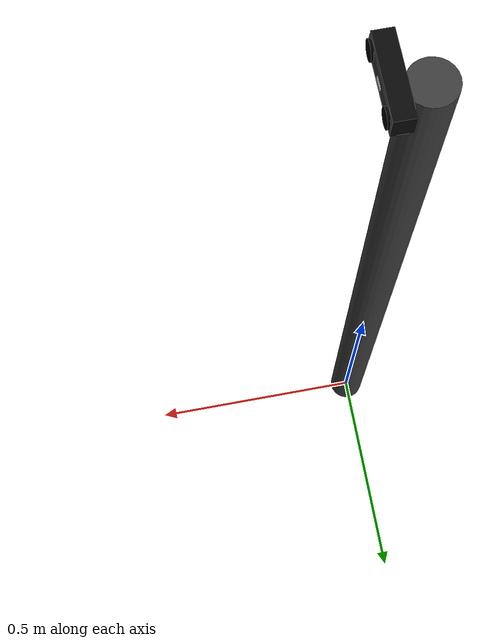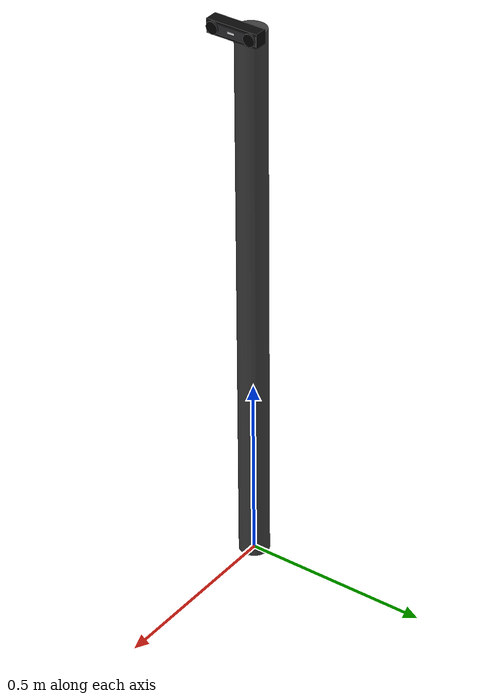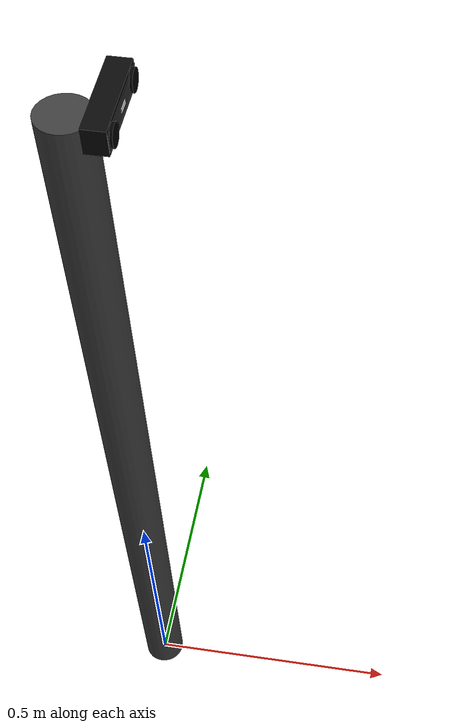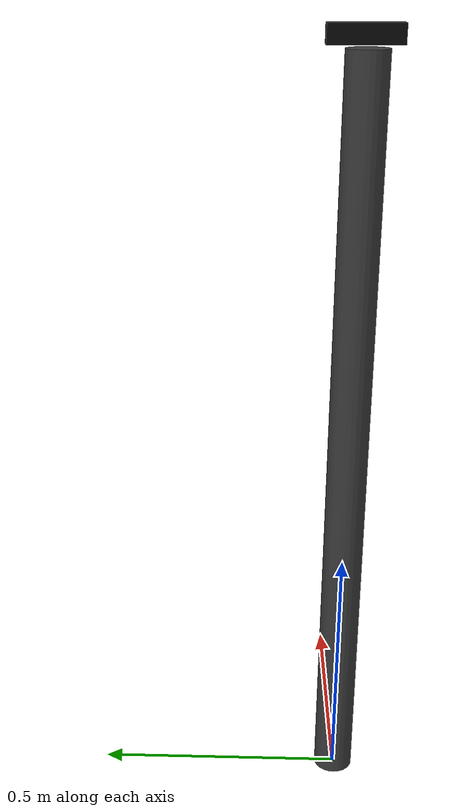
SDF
<sdf version="1.7">
 <world name="baylands_zedx_pole">
  <plugin filename="gz-sim-physics-system" name="gz::sim::systems::Physics"/>
  <plugin filename="gz-sim-user-commands-system" name="gz::sim::systems::UserCommands"/>
  <plugin filename="gz-sim-scene-broadcaster-system" name="gz::sim::systems::SceneBroadcaster"/>
  <plugin filename="gz-sim-sensors-system" name="gz::sim::systems::Sensors"/>
  <plugin filename="gz-sim-imu-system" name="gz::sim::systems::Imu"/>
  <physics name="default" type="ignored">
   <max_step_size>0.001</max_step_size>
   <real_time_factor>1.0</real_time_factor>
  </physics>
  <light name="sun" type="directional">
   <pose>0 0 10 0 0 0</pose>
   <intensity>3</intensity>
   <diffuse>1 1 1 1</diffuse>
   <specular>0.1 0.1 0.1 1</specular>
   <attenuation>
    <range>1000</range>
    <constant>0.9</constant>
    <linear>0.01</linear>
    <quadratic>0.001</quadratic>
   </attenuation>
   <direction>-0.5 0.5 -1</direction>
  </light>
  <model name="zedx_pole">
   <static>true</static>
   <pose>0 0 1.5 0 0 0</pose>
   <link name="pole_link">
    <collision name="pole_collision">
     <pose>0 0 -0.75 0 0 0</pose>
     <geometry><cylinder><radius>0.04</radius><length>1.5</length></cylinder></geometry>
    </collision>
    <visual name="pole_visual">
     <pose>0 0 -0.75 0 0 0</pose>
     <geometry><cylinder><radius>0.04</radius><length>1.5</length></cylinder></geometry>
     <material><ambient>0.18 0.18 0.18 1</ambient><diffuse>0.24 0.24 0.24 1</diffuse></material>
    </visual>
    <visual name="camera_body_visual">
     <pose>0.06 0 0.02 0 0 0</pose>
     <geometry><box><size>0.034 0.140 0.037</size></box></geometry>
     <material>
      <ambient>0.02 0.02 0.025 1</ambient>
      <diffuse>0.035 0.035 0.04 1</diffuse>
      <specular>0.2 0.2 0.2 1</specular>
     </material>
    </visual>
    <visual name="camera_front_face_visual">
     <pose>0.077 0 0.02 0 0 0</pose>
     <geometry><box><size>0.002 0.138 0.025</size></box></geometry>
     <material>
      <ambient>0.12 0.12 0.13 1</ambient>
      <diffuse>0.18 0.18 0.19 1</diffuse>
      <specular>0.3 0.3 0.3 1</specular>
     </material>
    </visual>
    <visual name="left_lens_visual">
     <pose>0.079 0.052 0.02 0 1.570796 0</pose>
     <geometry><cylinder><radius>0.016</radius><length>0.006</length></cylinder></geometry>
     <material>
      <ambient>0 0 0 1</ambient>
      <diffuse>0.005 0.005 0.008 1</diffuse>
      <specular>0.9 0.9 0.95 1</specular>
     </material>
    </visual>
    <visual name="left_lens_inner_visual">
     <pose>0.080 0.052 0.02 0 1.570796 0</pose>
     <geometry><cylinder><radius>0.008</radius><length>0.003</length></cylinder></geometry>
     <material><ambient>0 0 0 1</ambient><diffuse>0 0 0 1</diffuse><specular>1 1 1 1</specular></material>
    </visual>
    <visual name="right_lens_visual">
     <pose>0.079 -0.052 0.02 0 1.570796 0</pose>
     <geometry><cylinder><radius>0.016</radius><length>0.006</length></cylinder></geometry>
     <material>
      <ambient>0 0 0 1</ambient>
      <diffuse>0.005 0.005 0.008 1</diffuse>
      <specular>0.9 0.9 0.95 1</specular>
     </material>
    </visual>
    <visual name="right_lens_inner_visual">
     <pose>0.080 -0.052 0.02 0 1.570796 0</pose>
     <geometry><cylinder><radius>0.008</radius><length>0.003</length></cylinder></geometry>
     <material><ambient>0 0 0 1</ambient><diffuse>0 0 0 1</diffuse><specular>1 1 1 1</specular></material>
    </visual>
    <visual name="zed_logo_visual">
     <pose>0.079 0 0.0205 0 0 0</pose>
     <geometry><box><size>0.001 0.020 0.006</size></box></geometry>
     <material>
      <ambient>0.85 0.85 0.85 1</ambient>
      <diffuse>0.95 0.95 0.95 1</diffuse>
      <emissive>0.35 0.35 0.35 1</emissive>
     </material>
    </visual>
    <sensor name="zedx_rgbd" type="rgbd_camera">
     <pose>0.083 0 0.02 0 0 0</pose>
     <always_on>1</always_on>
     <update_rate>30</update_rate>
     <visualize>1</visualize>
     <camera name="zedx_rgbd">
      <horizontal_fov>1.919862</horizontal_fov>
      <image><width>960</width><height>600</height><format>R8G8B8</format></image>
      <clip><near>0.03</near><far>40</far></clip>
      <depth_camera><clip><near>0.3</near><far>20.0</far></clip></depth_camera>
      <noise><type>gaussian</type><mean>0</mean><stddev>0.005</stddev></noise>
     </camera>
    </sensor>
    <sensor name="zedx_imu" type="imu">
     <topic>/model/zedx_pole/imu</topic>
     <always_on>1</always_on>
     <update_rate>200</update_rate>
     <imu><enable_orientation>0</enable_orientation></imu>
    </sensor>
   </link>
  </model>
 </world>
</sdf>
